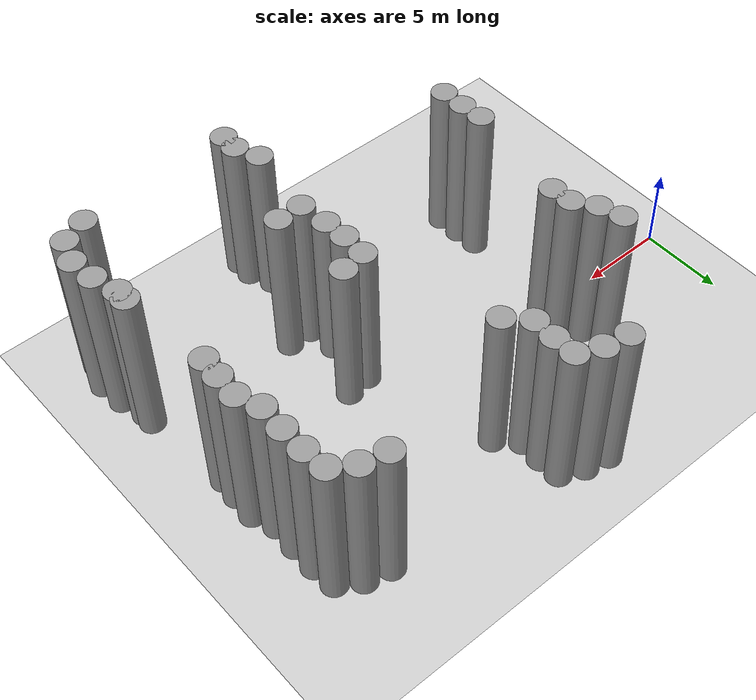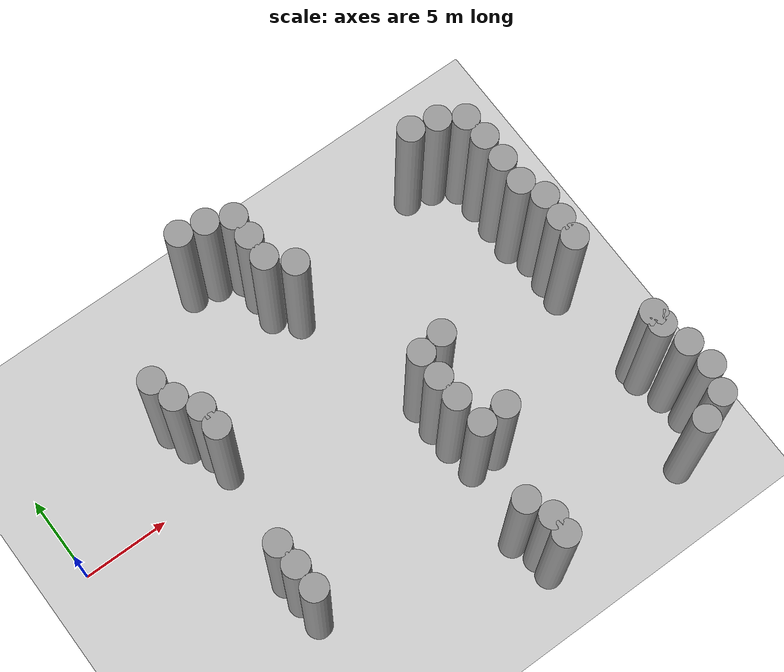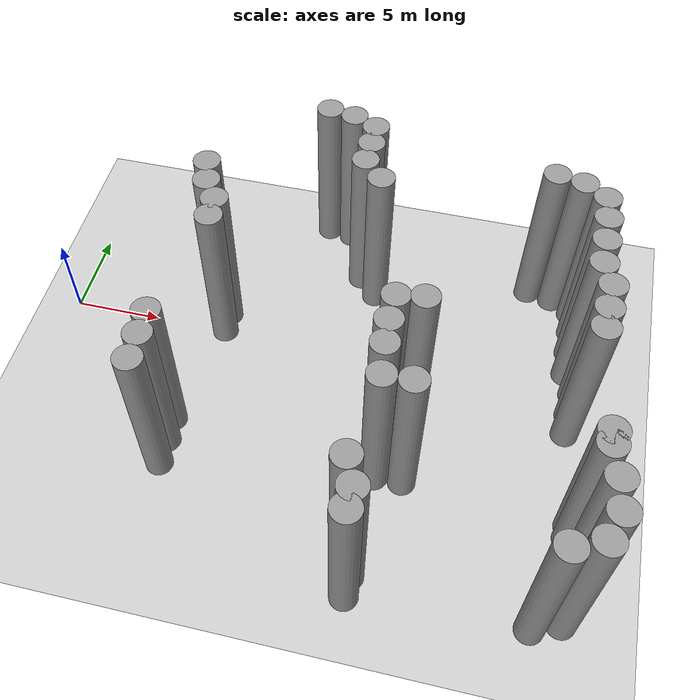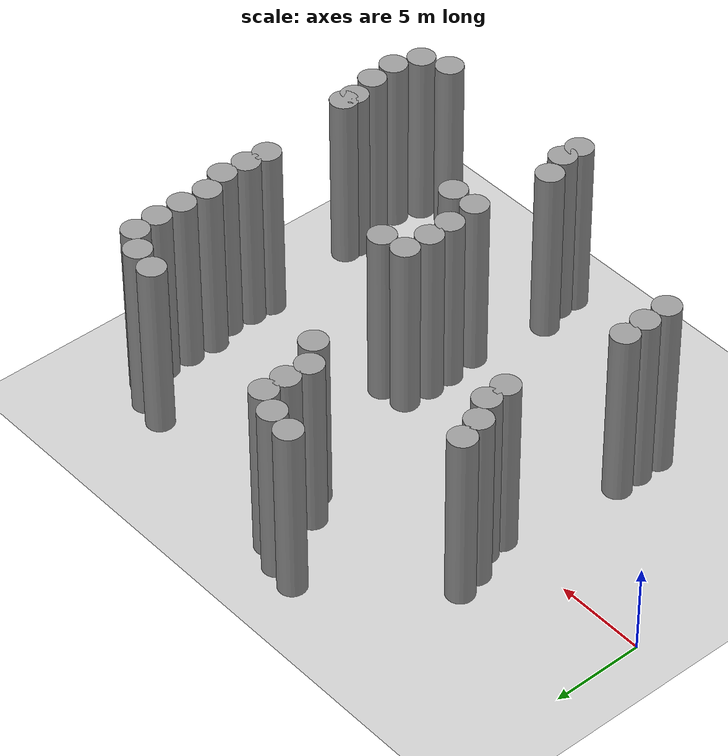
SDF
<sdf version="1.6">
 <world name="default">
  <light name="sun" type="directional">
   <pose>0 0 10 0 -0 0</pose>
   <diffuse>0.8 0.8 0.8 1</diffuse>
   <specular>0.2 0.2 0.2 1</specular>
   <attenuation>
    <range>1000</range>
    <constant>0.9</constant>
    <linear>0.01</linear>
    <quadratic>0.001</quadratic>
   </attenuation>
   <direction>-0.5 0.1 -0.9</direction>
  </light>
  <model name="ground_plane">
   <static>1</static>
   <link name="link">
    <collision name="collision">
     <geometry><plane><normal>0 0 1</normal><size>100 100</size></plane></geometry>
     <surface><friction><ode><mu>100</mu><mu2>50</mu2></ode></friction></surface>
    </collision>
    <visual name="visual">
     <cast_shadows>0</cast_shadows>
     <geometry><plane><normal>0 0 1</normal><size>100 100</size></plane></geometry>
     <material>
      <script><uri>file://media/materials/scripts/gazebo.material</uri><name>Gazebo/Grey</name></script>
     </material>
    </visual>
   </link>
  </model>
  <gravity>0 0 -9.8</gravity>
  <magnetic_field>6e-06 2.3e-05 -4.2e-05</magnetic_field>
  <atmosphere type="adiabatic"/>
  <physics name="default_physics" default="0" type="ode">
   <max_step_size>0.004</max_step_size>
   <real_time_factor>1</real_time_factor>
   <real_time_update_rate>250</real_time_update_rate>
  </physics>
  <scene><ambient>0.4 0.4 0.4 1</ambient><background>0.7 0.7 0.7 1</background><shadows>1</shadows></scene>
  <spherical_coordinates>
   <surface_model>EARTH_WGS84</surface_model>
   <latitude_deg>0</latitude_deg>
   <longitude_deg>0</longitude_deg>
   <elevation>0</elevation>
   <heading_deg>0</heading_deg>
  </spherical_coordinates>
  <model name="column">
   <pose>9.27049 0.007176 5 0 -0 0</pose>
   <static>1</static>
   <link name="link">
    <inertial>
     <mass>100</mass>
     <inertia><ixx>0.83</ixx><ixy>0</ixy><ixz>0</ixz><iyy>0.83</iyy><iyz>0</iyz><izz>0.83</izz></inertia>
    </inertial>
    <collision name="collision">
     <geometry><cylinder><radius>0.75</radius><length>10</length></cylinder></geometry>
    </collision>
    <visual name="visual">
     <geometry><cylinder><radius>0.75</radius><length>10</length></cylinder></geometry>
     <material>
      <script><uri>file://media/materials/scripts/gazebo.material</uri><name>Gazebo/Grey</name></script>
     </material>
    </visual>
   </link>
  </model>
  <model name="column_clone">
   <pose>9.19364 1.24365 5 0 -0 0</pose>
   <static>1</static>
   <link name="link">
    <inertial>
     <mass>100</mass>
     <inertia><ixx>0.83</ixx><ixy>0</ixy><ixz>0</ixz><iyy>0.83</iyy><iyz>0</iyz><izz>0.83</izz></inertia>
    </inertial>
    <collision name="collision">
     <geometry><cylinder><radius>0.75</radius><length>10</length></cylinder></geometry>
    </collision>
    <visual name="visual">
     <geometry><cylinder><radius>0.75</radius><length>10</length></cylinder></geometry>
     <material>
      <script><uri>file://media/materials/scripts/gazebo.material</uri><name>Gazebo/Grey</name></script>
     </material>
    </visual>
   </link>
  </model>
  <model name="column_clone_0">
   <pose>19.6336 -2.93666 5 0 -0 0</pose>
   <static>1</static>
   <link name="link">
    <inertial>
     <mass>100</mass>
     <inertia><ixx>0.83</ixx><ixy>0</ixy><ixz>0</ixz><iyy>0.83</iyy><iyz>0</iyz><izz>0.83</izz></inertia>
    </inertial>
    <collision name="collision">
     <geometry><cylinder><radius>0.75</radius><length>10</length></cylinder></geometry>
    </collision>
    <visual name="visual">
     <geometry><cylinder><radius>0.75</radius><length>10</length></cylinder></geometry>
     <material>
      <script><uri>file://media/materials/scripts/gazebo.material</uri><name>Gazebo/Grey</name></script>
     </material>
    </visual>
   </link>
  </model>
  <model name="column_clone_1">
   <pose>19.5843 -4.43466 5 0 -0 0</pose>
   <static>1</static>
   <link name="link">
    <inertial>
     <mass>100</mass>
     <inertia><ixx>0.83</ixx><ixy>0</ixy><ixz>0</ixz><iyy>0.83</iyy><iyz>0</iyz><izz>0.83</izz></inertia>
    </inertial>
    <collision name="collision">
     <geometry><cylinder><radius>0.75</radius><length>10</length></cylinder></geometry>
    </collision>
    <visual name="visual">
     <geometry><cylinder><radius>0.75</radius><length>10</length></cylinder></geometry>
     <material>
      <script><uri>file://media/materials/scripts/gazebo.material</uri><name>Gazebo/Grey</name></script>
     </material>
    </visual>
   </link>
  </model>
  <model name="column_clone_2">
   <pose>19.6678 -5.81777 5 0 -0 0</pose>
   <static>1</static>
   <link name="link">
    <inertial>
     <mass>100</mass>
     <inertia><ixx>0.83</ixx><ixy>0</ixy><ixz>0</ixz><iyy>0.83</iyy><iyz>0</iyz><izz>0.83</izz></inertia>
    </inertial>
    <collision name="collision">
     <geometry><cylinder><radius>0.75</radius><length>10</length></cylinder></geometry>
    </collision>
    <visual name="visual">
     <geometry><cylinder><radius>0.75</radius><length>10</length></cylinder></geometry>
     <material>
      <script><uri>file://media/materials/scripts/gazebo.material</uri><name>Gazebo/Grey</name></script>
     </material>
    </visual>
   </link>
  </model>
  <model name="column_clone_3">
   <pose>29.6742 -1.35747 5 0 -0 0</pose>
   <static>1</static>
   <link name="link">
    <inertial>
     <mass>100</mass>
     <inertia><ixx>0.83</ixx><ixy>0</ixy><ixz>0</ixz><iyy>0.83</iyy><iyz>0</iyz><izz>0.83</izz></inertia>
    </inertial>
    <collision name="collision">
     <geometry><cylinder><radius>0.75</radius><length>10</length></cylinder></geometry>
    </collision>
    <visual name="visual">
     <geometry><cylinder><radius>0.75</radius><length>10</length></cylinder></geometry>
     <material>
      <script><uri>file://media/materials/scripts/gazebo.material</uri><name>Gazebo/Grey</name></script>
     </material>
    </visual>
   </link>
  </model>
  <model name="column_clone_4">
   <pose>29.5822 -2.59825 5 0 -0 0</pose>
   <static>1</static>
   <link name="link">
    <inertial>
     <mass>100</mass>
     <inertia><ixx>0.83</ixx><ixy>0</ixy><ixz>0</ixz><iyy>0.83</iyy><iyz>0</iyz><izz>0.83</izz></inertia>
    </inertial>
    <collision name="collision">
     <geometry><cylinder><radius>0.75</radius><length>10</length></cylinder></geometry>
    </collision>
    <visual name="visual">
     <geometry><cylinder><radius>0.75</radius><length>10</length></cylinder></geometry>
     <material>
      <script><uri>file://media/materials/scripts/gazebo.material</uri><name>Gazebo/Grey</name></script>
     </material>
    </visual>
   </link>
  </model>
  <model name="column_clone_5">
   <pose>29.7591 0.072684 5 0 -0 0</pose>
   <static>1</static>
   <link name="link">
    <inertial>
     <mass>100</mass>
     <inertia><ixx>0.83</ixx><ixy>0</ixy><ixz>0</ixz><iyy>0.83</iyy><iyz>0</iyz><izz>0.83</izz></inertia>
    </inertial>
    <collision name="collision">
     <geometry><cylinder><radius>0.75</radius><length>10</length></cylinder></geometry>
    </collision>
    <visual name="visual">
     <geometry><cylinder><radius>0.75</radius><length>10</length></cylinder></geometry>
     <material>
      <script><uri>file://media/materials/scripts/gazebo.material</uri><name>Gazebo/Grey</name></script>
     </material>
    </visual>
   </link>
  </model>
  <model name="column_clone_6">
   <pose>8.24849 -6.55743 5 0 -0 0</pose>
   <static>1</static>
   <link name="link">
    <inertial>
     <mass>100</mass>
     <inertia><ixx>0.83</ixx><ixy>0</ixy><ixz>0</ixz><iyy>0.83</iyy><iyz>0</iyz><izz>0.83</izz></inertia>
    </inertial>
    <collision name="collision">
     <geometry><cylinder><radius>0.75</radius><length>10</length></cylinder></geometry>
    </collision>
    <visual name="visual">
     <geometry><cylinder><radius>0.75</radius><length>10</length></cylinder></geometry>
     <material>
      <script><uri>file://media/materials/scripts/gazebo.material</uri><name>Gazebo/Grey</name></script>
     </material>
    </visual>
   </link>
  </model>
  <model name="column_clone_7">
   <pose>8.34051 -7.93085 5 0 -0 0</pose>
   <static>1</static>
   <link name="link">
    <inertial>
     <mass>100</mass>
     <inertia><ixx>0.83</ixx><ixy>0</ixy><ixz>0</ixz><iyy>0.83</iyy><iyz>0</iyz><izz>0.83</izz></inertia>
    </inertial>
    <collision name="collision">
     <geometry><cylinder><radius>0.75</radius><length>10</length></cylinder></geometry>
    </collision>
    <visual name="visual">
     <geometry><cylinder><radius>0.75</radius><length>10</length></cylinder></geometry>
     <material>
      <script><uri>file://media/materials/scripts/gazebo.material</uri><name>Gazebo/Grey</name></script>
     </material>
    </visual>
   </link>
  </model>
  <model name="column_clone_8">
   <pose>8.39129 -9.38267 5 0 -0 0</pose>
   <static>1</static>
   <link name="link">
    <inertial>
     <mass>100</mass>
     <inertia><ixx>0.83</ixx><ixy>0</ixy><ixz>0</ixz><iyy>0.83</iyy><iyz>0</iyz><izz>0.83</izz></inertia>
    </inertial>
    <collision name="collision">
     <geometry><cylinder><radius>0.75</radius><length>10</length></cylinder></geometry>
    </collision>
    <visual name="visual">
     <geometry><cylinder><radius>0.75</radius><length>10</length></cylinder></geometry>
     <material>
      <script><uri>file://media/materials/scripts/gazebo.material</uri><name>Gazebo/Grey</name></script>
     </material>
    </visual>
   </link>
  </model>
  <model name="column_clone_9">
   <pose>19.7675 -14.437 5 0 -0 0</pose>
   <static>1</static>
   <link name="link">
    <inertial>
     <mass>100</mass>
     <inertia><ixx>0.83</ixx><ixy>0</ixy><ixz>0</ixz><iyy>0.83</iyy><iyz>0</iyz><izz>0.83</izz></inertia>
    </inertial>
    <collision name="collision">
     <geometry><cylinder><radius>0.75</radius><length>10</length></cylinder></geometry>
    </collision>
    <visual name="visual">
     <geometry><cylinder><radius>0.75</radius><length>10</length></cylinder></geometry>
     <material>
      <script><uri>file://media/materials/scripts/gazebo.material</uri><name>Gazebo/Grey</name></script>
     </material>
    </visual>
   </link>
  </model>
  <model name="column_clone_10">
   <pose>19.8163 -13.3626 5 0 -0 0</pose>
   <static>1</static>
   <link name="link">
    <inertial>
     <mass>100</mass>
     <inertia><ixx>0.83</ixx><ixy>0</ixy><ixz>0</ixz><iyy>0.83</iyy><iyz>0</iyz><izz>0.83</izz></inertia>
    </inertial>
    <collision name="collision">
     <geometry><cylinder><radius>0.75</radius><length>10</length></cylinder></geometry>
    </collision>
    <visual name="visual">
     <geometry><cylinder><radius>0.75</radius><length>10</length></cylinder></geometry>
     <material>
      <script><uri>file://media/materials/scripts/gazebo.material</uri><name>Gazebo/Grey</name></script>
     </material>
    </visual>
   </link>
  </model>
  <model name="column_clone_11">
   <pose>16.299 8.54041 5 0 -0 0</pose>
   <static>1</static>
   <link name="link">
    <inertial>
     <mass>100</mass>
     <inertia><ixx>0.83</ixx><ixy>0</ixy><ixz>0</ixz><iyy>0.83</iyy><iyz>0</iyz><izz>0.83</izz></inertia>
    </inertial>
    <collision name="collision">
     <geometry><cylinder><radius>0.75</radius><length>10</length></cylinder></geometry>
    </collision>
    <visual name="visual">
     <geometry><cylinder><radius>0.75</radius><length>10</length></cylinder></geometry>
     <material>
      <script><uri>file://media/materials/scripts/gazebo.material</uri><name>Gazebo/Grey</name></script>
     </material>
    </visual>
   </link>
  </model>
  <model name="column_clone_12">
   <pose>16.322 7.22115 5 0 -0 0</pose>
   <static>1</static>
   <link name="link">
    <inertial>
     <mass>100</mass>
     <inertia><ixx>0.83</ixx><ixy>0</ixy><ixz>0</ixz><iyy>0.83</iyy><iyz>0</iyz><izz>0.83</izz></inertia>
    </inertial>
    <collision name="collision">
     <geometry><cylinder><radius>0.75</radius><length>10</length></cylinder></geometry>
    </collision>
    <visual name="visual">
     <geometry><cylinder><radius>0.75</radius><length>10</length></cylinder></geometry>
     <material>
      <script><uri>file://media/materials/scripts/gazebo.material</uri><name>Gazebo/Grey</name></script>
     </material>
    </visual>
   </link>
  </model>
  <model name="column_clone_13">
   <pose>29.2449 1.42783 5 0 -0 0</pose>
   <static>1</static>
   <link name="link">
    <inertial>
     <mass>100</mass>
     <inertia><ixx>0.83</ixx><ixy>0</ixy><ixz>0</ixz><iyy>0.83</iyy><iyz>0</iyz><izz>0.83</izz></inertia>
    </inertial>
    <collision name="collision">
     <geometry><cylinder><radius>0.75</radius><length>10</length></cylinder></geometry>
    </collision>
    <visual name="visual">
     <geometry><cylinder><radius>0.75</radius><length>10</length></cylinder></geometry>
     <material>
      <script><uri>file://media/materials/scripts/gazebo.material</uri><name>Gazebo/Grey</name></script>
     </material>
    </visual>
   </link>
  </model>
  <model name="column_clone_12_clone">
   <pose>16.2825 5.84201 5 0 -0 0</pose>
   <static>1</static>
   <link name="link">
    <inertial>
     <mass>100</mass>
     <inertia><ixx>0.83</ixx><ixy>0</ixy><ixz>0</ixz><iyy>0.83</iyy><iyz>0</iyz><izz>0.83</izz></inertia>
    </inertial>
    <collision name="collision">
     <geometry><cylinder><radius>0.75</radius><length>10</length></cylinder></geometry>
    </collision>
    <visual name="visual">
     <geometry><cylinder><radius>0.75</radius><length>10</length></cylinder></geometry>
     <material>
      <script><uri>file://media/materials/scripts/gazebo.material</uri><name>Gazebo/Grey</name></script>
     </material>
    </visual>
   </link>
  </model>
  <model name="column_clone_12_clone_0">
   <pose>29.2809 2.98006 5 0 -0 0</pose>
   <static>1</static>
   <link name="link">
    <inertial>
     <mass>100</mass>
     <inertia><ixx>0.83</ixx><ixy>0</ixy><ixz>0</ixz><iyy>0.83</iyy><iyz>0</iyz><izz>0.83</izz></inertia>
    </inertial>
    <collision name="collision">
     <geometry><cylinder><radius>0.75</radius><length>10</length></cylinder></geometry>
    </collision>
    <visual name="visual">
     <geometry><cylinder><radius>0.75</radius><length>10</length></cylinder></geometry>
     <material>
      <script><uri>file://media/materials/scripts/gazebo.material</uri><name>Gazebo/Grey</name></script>
     </material>
    </visual>
   </link>
  </model>
  <model name="column_clone_12_clone_1">
   <pose>29.2791 4.50962 5 0 -0 0</pose>
   <static>1</static>
   <link name="link">
    <inertial>
     <mass>100</mass>
     <inertia><ixx>0.83</ixx><ixy>0</ixy><ixz>0</ixz><iyy>0.83</iyy><iyz>0</iyz><izz>0.83</izz></inertia>
    </inertial>
    <collision name="collision">
     <geometry><cylinder><radius>0.75</radius><length>10</length></cylinder></geometry>
    </collision>
    <visual name="visual">
     <geometry><cylinder><radius>0.75</radius><length>10</length></cylinder></geometry>
     <material>
      <script><uri>file://media/materials/scripts/gazebo.material</uri><name>Gazebo/Grey</name></script>
     </material>
    </visual>
   </link>
  </model>
  <model name="column_clone_12_clone_2">
   <pose>29.1519 5.92737 5 0 -0 0</pose>
   <static>1</static>
   <link name="link">
    <inertial>
     <mass>100</mass>
     <inertia><ixx>0.83</ixx><ixy>0</ixy><ixz>0</ixz><iyy>0.83</iyy><iyz>0</iyz><izz>0.83</izz></inertia>
    </inertial>
    <collision name="collision">
     <geometry><cylinder><radius>0.75</radius><length>10</length></cylinder></geometry>
    </collision>
    <visual name="visual">
     <geometry><cylinder><radius>0.75</radius><length>10</length></cylinder></geometry>
     <material>
      <script><uri>file://media/materials/scripts/gazebo.material</uri><name>Gazebo/Grey</name></script>
     </material>
    </visual>
   </link>
  </model>
  <model name="column_clone_12_clone_3">
   <pose>19.8717 -7.59455 5 0 -0 0</pose>
   <static>1</static>
   <link name="link">
    <inertial>
     <mass>100</mass>
     <inertia><ixx>0.83</ixx><ixy>0</ixy><ixz>0</ixz><iyy>0.83</iyy><iyz>0</iyz><izz>0.83</izz></inertia>
    </inertial>
    <collision name="collision">
     <geometry><cylinder><radius>0.75</radius><length>10</length></cylinder></geometry>
    </collision>
    <visual name="visual">
     <geometry><cylinder><radius>0.75</radius><length>10</length></cylinder></geometry>
     <material>
      <script><uri>file://media/materials/scripts/gazebo.material</uri><name>Gazebo/Grey</name></script>
     </material>
    </visual>
   </link>
  </model>
  <model name="column_clone_12_clone_4">
   <pose>17.3837 4.66763 5 0 -0 0</pose>
   <static>1</static>
   <link name="link">
    <inertial>
     <mass>100</mass>
     <inertia><ixx>0.83</ixx><ixy>0</ixy><ixz>0</ixz><iyy>0.83</iyy><iyz>0</iyz><izz>0.83</izz></inertia>
    </inertial>
    <collision name="collision">
     <geometry><cylinder><radius>0.75</radius><length>10</length></cylinder></geometry>
    </collision>
    <visual name="visual">
     <geometry><cylinder><radius>0.75</radius><length>10</length></cylinder></geometry>
     <material>
      <script><uri>file://media/materials/scripts/gazebo.material</uri><name>Gazebo/Grey</name></script>
     </material>
    </visual>
   </link>
  </model>
  <model name="column_clone_12_clone_5">
   <pose>21.0562 -2.71614 5 0 -0 0</pose>
   <static>1</static>
   <link name="link">
    <inertial>
     <mass>100</mass>
     <inertia><ixx>0.83</ixx><ixy>0</ixy><ixz>0</ixz><iyy>0.83</iyy><iyz>0</iyz><izz>0.83</izz></inertia>
    </inertial>
    <collision name="collision">
     <geometry><cylinder><radius>0.75</radius><length>10</length></cylinder></geometry>
    </collision>
    <visual name="visual">
     <geometry><cylinder><radius>0.75</radius><length>10</length></cylinder></geometry>
     <material>
      <script><uri>file://media/materials/scripts/gazebo.material</uri><name>Gazebo/Grey</name></script>
     </material>
    </visual>
   </link>
  </model>
  <model name="column_clone_12_clone_6">
   <pose>21.3728 -7.56273 5 0 -0 0</pose>
   <static>1</static>
   <link name="link">
    <inertial>
     <mass>100</mass>
     <inertia><ixx>0.83</ixx><ixy>0</ixy><ixz>0</ixz><iyy>0.83</iyy><iyz>0</iyz><izz>0.83</izz></inertia>
    </inertial>
    <collision name="collision">
     <geometry><cylinder><radius>0.75</radius><length>10</length></cylinder></geometry>
    </collision>
    <visual name="visual">
     <geometry><cylinder><radius>0.75</radius><length>10</length></cylinder></geometry>
     <material>
      <script><uri>file://media/materials/scripts/gazebo.material</uri><name>Gazebo/Grey</name></script>
     </material>
    </visual>
   </link>
  </model>
  <model name="column_clone_12_clone_7">
   <pose>30.683 -10.3876 5 0 -0 0</pose>
   <static>1</static>
   <link name="link">
    <inertial>
     <mass>100</mass>
     <inertia><ixx>0.83</ixx><ixy>0</ixy><ixz>0</ixz><iyy>0.83</iyy><iyz>0</iyz><izz>0.83</izz></inertia>
    </inertial>
    <collision name="collision">
     <geometry><cylinder><radius>0.75</radius><length>10</length></cylinder></geometry>
    </collision>
    <visual name="visual">
     <geometry><cylinder><radius>0.75</radius><length>10</length></cylinder></geometry>
     <material>
      <script><uri>file://media/materials/scripts/gazebo.material</uri><name>Gazebo/Grey</name></script>
     </material>
    </visual>
   </link>
  </model>
  <model name="column_clone_12_clone_8">
   <pose>30.8603 -11.957 5 0 -0 0</pose>
   <static>1</static>
   <link name="link">
    <inertial>
     <mass>100</mass>
     <inertia><ixx>0.83</ixx><ixy>0</ixy><ixz>0</ixz><iyy>0.83</iyy><iyz>0</iyz><izz>0.83</izz></inertia>
    </inertial>
    <collision name="collision">
     <geometry><cylinder><radius>0.75</radius><length>10</length></cylinder></geometry>
    </collision>
    <visual name="visual">
     <geometry><cylinder><radius>0.75</radius><length>10</length></cylinder></geometry>
     <material>
      <script><uri>file://media/materials/scripts/gazebo.material</uri><name>Gazebo/Grey</name></script>
     </material>
    </visual>
   </link>
  </model>
  <model name="column_clone_12_clone_9">
   <pose>30.3647 -13.4005 5 0 -0 0</pose>
   <static>1</static>
   <link name="link">
    <inertial>
     <mass>100</mass>
     <inertia><ixx>0.83</ixx><ixy>0</ixy><ixz>0</ixz><iyy>0.83</iyy><iyz>0</iyz><izz>0.83</izz></inertia>
    </inertial>
    <collision name="collision">
     <geometry><cylinder><radius>0.75</radius><length>10</length></cylinder></geometry>
    </collision>
    <visual name="visual">
     <geometry><cylinder><radius>0.75</radius><length>10</length></cylinder></geometry>
     <material>
      <script><uri>file://media/materials/scripts/gazebo.material</uri><name>Gazebo/Grey</name></script>
     </material>
    </visual>
   </link>
  </model>
  <model name="column_clone_12_clone_10">
   <pose>28.8898 -14.0036 5 0 -0 0</pose>
   <static>1</static>
   <link name="link">
    <inertial>
     <mass>100</mass>
     <inertia><ixx>0.83</ixx><ixy>0</ixy><ixz>0</ixz><iyy>0.83</iyy><iyz>0</iyz><izz>0.83</izz></inertia>
    </inertial>
    <collision name="collision">
     <geometry><cylinder><radius>0.75</radius><length>10</length></cylinder></geometry>
    </collision>
    <visual name="visual">
     <geometry><cylinder><radius>0.75</radius><length>10</length></cylinder></geometry>
     <material>
      <script><uri>file://media/materials/scripts/gazebo.material</uri><name>Gazebo/Grey</name></script>
     </material>
    </visual>
   </link>
  </model>
  <model name="column_clone_12_clone_11">
   <pose>27.9185 6.74618 5 0 -0 0</pose>
   <static>1</static>
   <link name="link">
    <inertial>
     <mass>100</mass>
     <inertia><ixx>0.83</ixx><ixy>0</ixy><ixz>0</ixz><iyy>0.83</iyy><iyz>0</iyz><izz>0.83</izz></inertia>
    </inertial>
    <collision name="collision">
     <geometry><cylinder><radius>0.75</radius><length>10</length></cylinder></geometry>
    </collision>
    <visual name="visual">
     <geometry><cylinder><radius>0.75</radius><length>10</length></cylinder></geometry>
     <material>
      <script><uri>file://media/materials/scripts/gazebo.material</uri><name>Gazebo/Grey</name></script>
     </material>
    </visual>
   </link>
  </model>
  <model name="column_clone_12_clone_12">
   <pose>26.4397 7.07302 5 0 -0 0</pose>
   <static>1</static>
   <link name="link">
    <inertial>
     <mass>100</mass>
     <inertia><ixx>0.83</ixx><ixy>0</ixy><ixz>0</ixz><iyy>0.83</iyy><iyz>0</iyz><izz>0.83</izz></inertia>
    </inertial>
    <collision name="collision">
     <geometry><cylinder><radius>0.75</radius><length>10</length></cylinder></geometry>
    </collision>
    <visual name="visual">
     <geometry><cylinder><radius>0.75</radius><length>10</length></cylinder></geometry>
     <material>
      <script><uri>file://media/materials/scripts/gazebo.material</uri><name>Gazebo/Grey</name></script>
     </material>
    </visual>
   </link>
  </model>
  <model name="column_clone_12_clone_13">
   <pose>14.9538 9.15661 5 0 -0 0</pose>
   <static>1</static>
   <link name="link">
    <inertial>
     <mass>100</mass>
     <inertia><ixx>0.83</ixx><ixy>0</ixy><ixz>0</ixz><iyy>0.83</iyy><iyz>0</iyz><izz>0.83</izz></inertia>
    </inertial>
    <collision name="collision">
     <geometry><cylinder><radius>0.75</radius><length>10</length></cylinder></geometry>
    </collision>
    <visual name="visual">
     <geometry><cylinder><radius>0.75</radius><length>10</length></cylinder></geometry>
     <material>
      <script><uri>file://media/materials/scripts/gazebo.material</uri><name>Gazebo/Grey</name></script>
     </material>
    </visual>
   </link>
  </model>
  <model name="column_clone_12_clone_14">
   <pose>13.4992 9.42176 5 0 -0 0</pose>
   <static>1</static>
   <link name="link">
    <inertial>
     <mass>100</mass>
     <inertia><ixx>0.83</ixx><ixy>0</ixy><ixz>0</ixz><iyy>0.83</iyy><iyz>0</iyz><izz>0.83</izz></inertia>
    </inertial>
    <collision name="collision">
     <geometry><cylinder><radius>0.75</radius><length>10</length></cylinder></geometry>
    </collision>
    <visual name="visual">
     <geometry><cylinder><radius>0.75</radius><length>10</length></cylinder></geometry>
     <material>
      <script><uri>file://media/materials/scripts/gazebo.material</uri><name>Gazebo/Grey</name></script>
     </material>
    </visual>
   </link>
  </model>
  <model name="column_clone_12_clone_15">
   <pose>8.38359 2.46271 5 0 -0 0</pose>
   <static>1</static>
   <link name="link">
    <inertial>
     <mass>100</mass>
     <inertia><ixx>0.83</ixx><ixy>0</ixy><ixz>0</ixz><iyy>0.83</iyy><iyz>0</iyz><izz>0.83</izz></inertia>
    </inertial>
    <collision name="collision">
     <geometry><cylinder><radius>0.75</radius><length>10</length></cylinder></geometry>
    </collision>
    <visual name="visual">
     <geometry><cylinder><radius>0.75</radius><length>10</length></cylinder></geometry>
     <material>
      <script><uri>file://media/materials/scripts/gazebo.material</uri><name>Gazebo/Grey</name></script>
     </material>
    </visual>
   </link>
  </model>
  <model name="column_clone_12_clone_16">
   <pose>7.98365 3.80603 5 0 -0 0</pose>
   <static>1</static>
   <link name="link">
    <inertial>
     <mass>100</mass>
     <inertia><ixx>0.83</ixx><ixy>0</ixy><ixz>0</ixz><iyy>0.83</iyy><iyz>0</iyz><izz>0.83</izz></inertia>
    </inertial>
    <collision name="collision">
     <geometry><cylinder><radius>0.75</radius><length>10</length></cylinder></geometry>
    </collision>
    <visual name="visual">
     <geometry><cylinder><radius>0.75</radius><length>10</length></cylinder></geometry>
     <material>
      <script><uri>file://media/materials/scripts/gazebo.material</uri><name>Gazebo/Grey</name></script>
     </material>
    </visual>
   </link>
  </model>
  <model name="column_clone_12_clone_17">
   <pose>19.2337 -11.9678 5 0 -0 0</pose>
   <static>1</static>
   <link name="link">
    <inertial>
     <mass>100</mass>
     <inertia><ixx>0.83</ixx><ixy>0</ixy><ixz>0</ixz><iyy>0.83</iyy><iyz>0</iyz><izz>0.83</izz></inertia>
    </inertial>
    <collision name="collision">
     <geometry><cylinder><radius>0.75</radius><length>10</length></cylinder></geometry>
    </collision>
    <visual name="visual">
     <geometry><cylinder><radius>0.75</radius><length>10</length></cylinder></geometry>
     <material>
      <script><uri>file://media/materials/scripts/gazebo.material</uri><name>Gazebo/Grey</name></script>
     </material>
    </visual>
   </link>
  </model>
  <model name="column_clone_12_clone_18">
   <pose>30.2428 -8.83558 5 0 -0 0</pose>
   <static>1</static>
   <link name="link">
    <inertial>
     <mass>100</mass>
     <inertia><ixx>0.83</ixx><ixy>0</ixy><ixz>0</ixz><iyy>0.83</iyy><iyz>0</iyz><izz>0.83</izz></inertia>
    </inertial>
    <collision name="collision">
     <geometry><cylinder><radius>0.75</radius><length>10</length></cylinder></geometry>
    </collision>
    <visual name="visual">
     <geometry><cylinder><radius>0.75</radius><length>10</length></cylinder></geometry>
     <material>
      <script><uri>file://media/materials/scripts/gazebo.material</uri><name>Gazebo/Grey</name></script>
     </material>
    </visual>
   </link>
  </model>
  <model name="column_clone_12_clone_19">
   <pose>30.2542 -8.1471 5 0 -0 0</pose>
   <static>1</static>
   <link name="link">
    <inertial>
     <mass>100</mass>
     <inertia><ixx>0.83</ixx><ixy>0</ixy><ixz>0</ixz><iyy>0.83</iyy><iyz>0</iyz><izz>0.83</izz></inertia>
    </inertial>
    <collision name="collision">
     <geometry><cylinder><radius>0.75</radius><length>10</length></cylinder></geometry>
    </collision>
    <visual name="visual">
     <geometry><cylinder><radius>0.75</radius><length>10</length></cylinder></geometry>
     <material>
      <script><uri>file://media/materials/scripts/gazebo.material</uri><name>Gazebo/Grey</name></script>
     </material>
    </visual>
   </link>
  </model>
 </world>
</sdf>
